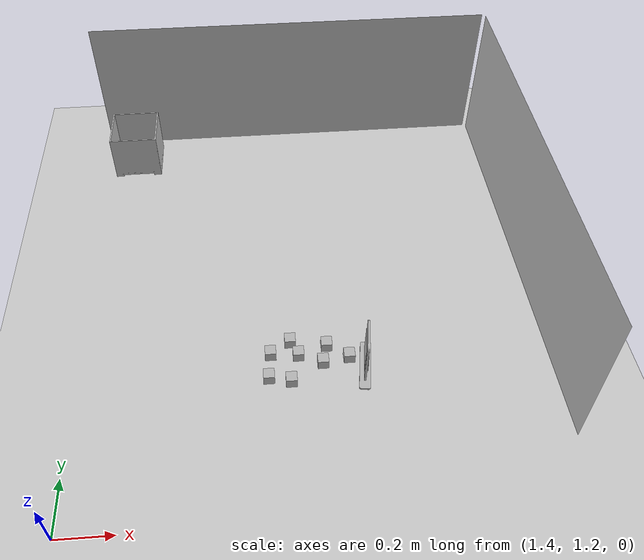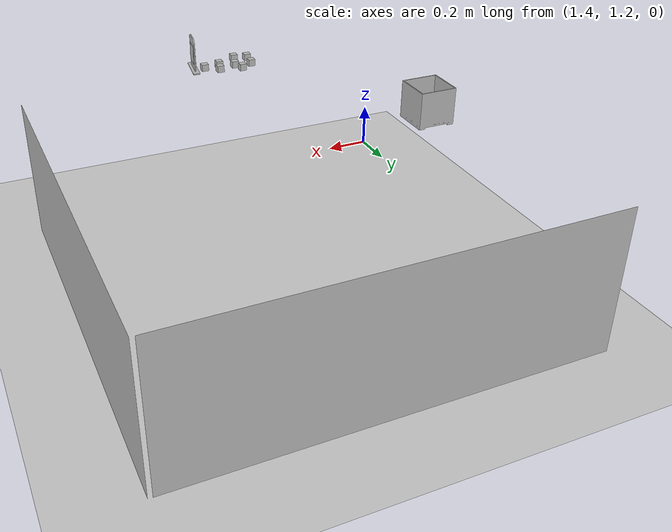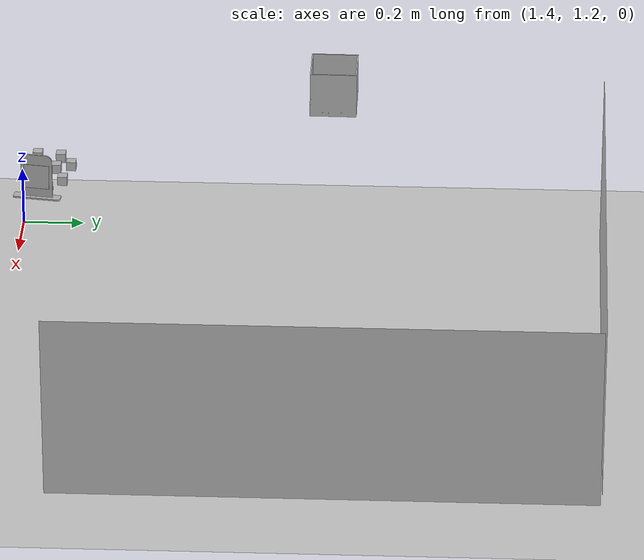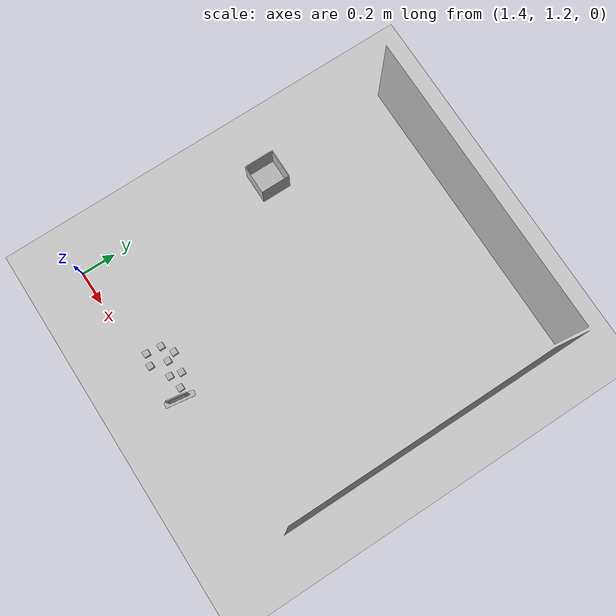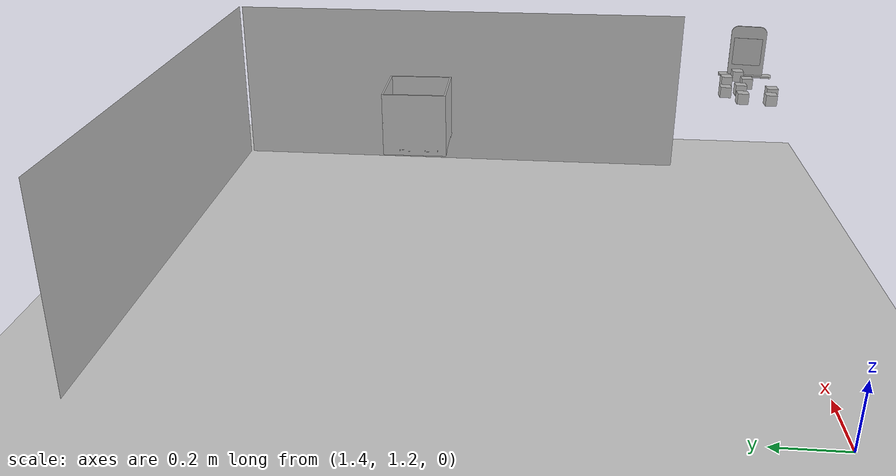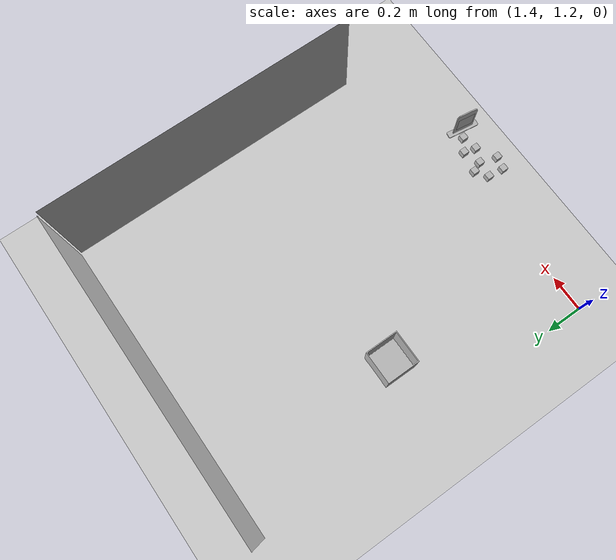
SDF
<sdf version="1.7">
 <world name="default">
  <model name="ground_plane">
   <static>1</static>
   <link name="link">
    <collision name="collision">
     <geometry><plane><normal>0 0 1</normal><size>100 100</size></plane></geometry>
     <surface><friction><ode><mu>100</mu><mu2>50</mu2></ode></friction></surface>
    </collision>
    <visual name="visual">
     <cast_shadows>0</cast_shadows>
     <geometry><plane><normal>0 0 1</normal><size>100 100</size></plane></geometry>
     <material>
      <script><uri>file://media/materials/scripts/gazebo.material</uri><name>Gazebo/Grey</name></script>
     </material>
    </visual>
   </link>
  </model>
  <model name="pancarte_qr_code_zone2Missebo">
   <pose>2.3585 1.34573 0.649378 -0 -0 -1.71538</pose>
   <model name="pancarte">
    <static>1</static>
    <link name="link">
     <collision name="collision">
      <pose>0 0.075 0 0 -0 0</pose>
      <geometry><box><size>0.15 0.15 0.03</size></box></geometry>
     </collision>
     <visual name="visual">
      <geometry>
       <mesh><scale>0.001 0.001 0.001</scale><uri>model://pancarte/meshes/PANCARTE_QR.stl</uri></mesh>
      </geometry>
     </visual>
    </link>
    <pose>8.8e-05 0.001115 -0.037644 1.55978 -0 0</pose>
   </model>
   <model name="qr_code_zone2Missebo">
    <static>1</static>
    <link name="qr_code_zone2Missebo_link">
     <pose>0 0 0.001 0 -0 1.5708</pose>
     <visual name="visual_qr_code_zone2Missebo">
      <cast_shadows>0</cast_shadows>
      <geometry><box><size>0.08 0.08 0.001</size></box></geometry>
      <material>
       <script>
        <uri>model://qr_code_zone2Missebo/materials/scripts</uri>
        <uri>model://qr_code_zone2Missebo/materials/textures</uri>
        <name>qr_code_zone2Missebo/qr_code_zone2Missebo</name>
       </script>
      </material>
     </visual>
    </link>
    <pose>-8.8e-05 -0.001115 0.037644 1.55615 -0 0</pose>
   </model>
   <model name="qr_code_zone2Missebo_0">
    <static>1</static>
    <link name="qr_code_zone2Missebo_link">
     <pose>0 0 0.001 0 -0 1.5708</pose>
     <visual name="visual_qr_code_zone2Missebo">
      <cast_shadows>0</cast_shadows>
      <geometry><box><size>0.08 0.08 0.001</size></box></geometry>
      <material>
       <script>
        <uri>model://qr_code_zone2Missebo/materials/scripts</uri>
        <uri>model://qr_code_zone2Missebo/materials/textures</uri>
        <name>qr_code_zone2Missebo/qr_code_zone2Missebo</name>
       </script>
      </material>
     </visual>
    </link>
    <pose>-8.8e-05 0.0072 0.037644 -1.58544 0.001593 3.14159</pose>
   </model>
   <static>0</static>
  </model>
  <model name="menagers_industrielle_caisse_plastique">
   <static>0</static>
   <link name="link">
    <inertial>
     <mass>0.00893</mass>
     <inertia>
      <ixx>4.47e-06</ixx>
      <iyy>4.47e-06</iyy>
      <izz>4.47e-06</izz>
      <ixy>0</ixy>
      <ixz>0</ixz>
      <iyz>0</iyz>
     </inertia>
    </inertial>
    <visual name="cube_visual">
     <geometry><box><size>0.03 0.03 0.03</size></box></geometry>
     <material>
      <script>
       <uri>model://menagers_industrielle_caisse_plastique/materials/scripts/</uri>
       <uri>model://menagers_industrielle_caisse_plastique/materials/textures/</uri>
       <name>menagers_industrielle_caisse_plastique/FaceMaterial</name>
      </script>
     </material>
    </visual>
    <collision name="collision"><geometry><box><size>0.03 0.03 0.03</size></box></geometry></collision>
   </link>
   <pose>2.24675 1.36235 0.624991 1.8e-05 0 -0.002003</pose>
  </model>
  <model name="menagers_residentielle_bouteille_lait">
   <static>0</static>
   <link name="link">
    <inertial>
     <mass>0.00893</mass>
     <inertia>
      <ixx>4.47e-06</ixx>
      <iyy>4.47e-06</iyy>
      <izz>4.47e-06</izz>
      <ixy>0</ixy>
      <ixz>0</ixz>
      <iyz>0</iyz>
     </inertia>
    </inertial>
    <visual name="cube_visual">
     <geometry><box><size>0.03 0.03 0.03</size></box></geometry>
     <material>
      <script>
       <uri>model://menagers_residentielle_bouteille_lait/materials/scripts/</uri>
       <uri>model://menagers_residentielle_bouteille_lait/materials/textures/</uri>
       <name>menagers_residentielle_bouteille_lait/FaceMaterial</name>
      </script>
     </material>
    </visual>
    <collision name="collision"><geometry><box><size>0.03 0.03 0.03</size></box></geometry></collision>
   </link>
   <pose>2.15775 1.3103 0.624991 1.8e-05 0 -0.002003</pose>
  </model>
  <model name="recyclables_commerciale_metal_conserve_grande">
   <static>0</static>
   <link name="link">
    <inertial>
     <mass>0.00893</mass>
     <inertia>
      <ixx>4.47e-06</ixx>
      <iyy>4.47e-06</iyy>
      <izz>4.47e-06</izz>
      <ixy>0</ixy>
      <ixz>0</ixz>
      <iyz>0</iyz>
     </inertia>
    </inertial>
    <visual name="cube_visual">
     <geometry><box><size>0.03 0.03 0.03</size></box></geometry>
     <material>
      <script>
       <uri>model://recyclables_commerciale_metal_conserve_grande/materials/scripts/</uri>
       <uri>model://recyclables_commerciale_metal_conserve_grande/materials/textures/</uri>
       <name>recyclables_commerciale_metal_conserve_grande/FaceMaterial</name>
      </script>
     </material>
    </visual>
    <collision name="collision"><geometry><box><size>0.03 0.03 0.03</size></box></geometry></collision>
   </link>
   <pose>2.16155 1.43649 0.625 -1e-06 -6e-06 -0.007125</pose>
  </model>
  <model name="recyclables_commerciale_papier_bureau_blanc">
   <static>0</static>
   <link name="link">
    <inertial>
     <mass>0.00893</mass>
     <inertia>
      <ixx>4.47e-06</ixx>
      <iyy>4.47e-06</iyy>
      <izz>4.47e-06</izz>
      <ixy>0</ixy>
      <ixz>0</ixz>
      <iyz>0</iyz>
     </inertia>
    </inertial>
    <visual name="cube_visual">
     <geometry><box><size>0.03 0.03 0.03</size></box></geometry>
     <material>
      <script>
       <uri>model://recyclables_commerciale_papier_bureau_blanc/materials/scripts/</uri>
       <uri>model://recyclables_commerciale_papier_bureau_blanc/materials/textures/</uri>
       <name>recyclables_commerciale_papier_bureau_blanc/FaceMaterial</name>
      </script>
     </material>
    </visual>
    <collision name="collision"><geometry><box><size>0.03 0.03 0.03</size></box></geometry></collision>
   </link>
   <pose>2.10613 1.39925 0.625 0 0 -0.006724</pose>
  </model>
  <model name="recyclables_residentielle_bouteille_plastique_propre">
   <static>0</static>
   <link name="link">
    <inertial>
     <mass>0.00893</mass>
     <inertia>
      <ixx>4.47e-06</ixx>
      <iyy>4.47e-06</iyy>
      <izz>4.47e-06</izz>
      <ixy>0</ixy>
      <ixz>0</ixz>
      <iyz>0</iyz>
     </inertia>
    </inertial>
    <visual name="cube_visual">
     <geometry><box><size>0.03 0.03 0.03</size></box></geometry>
     <material>
      <script>
       <uri>model://recyclables_residentielle_bouteille_plastique_propre/materials/scripts/</uri>
       <uri>model://recyclables_residentielle_bouteille_plastique_propre/materials/textures/</uri>
       <name>recyclables_residentielle_bouteille_plastique_propre/FaceMaterial</name>
      </script>
     </material>
    </visual>
    <collision name="collision"><geometry><box><size>0.03 0.03 0.03</size></box></geometry></collision>
   </link>
   <pose>2.09856 1.32494 0.625 0 -0 0.000658</pose>
  </model>
  <model name="recyclables_residentielle_bouteille_verre_huile">
   <static>0</static>
   <link name="link">
    <inertial>
     <mass>0.00893</mass>
     <inertia>
      <ixx>4.47e-06</ixx>
      <iyy>4.47e-06</iyy>
      <izz>4.47e-06</izz>
      <ixy>0</ixy>
      <ixz>0</ixz>
      <iyz>0</iyz>
     </inertia>
    </inertial>
    <visual name="cube_visual">
     <geometry><box><size>0.03 0.03 0.03</size></box></geometry>
     <material>
      <script>
       <uri>model://recyclables_residentielle_bouteille_verre_huile/materials/scripts/</uri>
       <uri>model://recyclables_residentielle_bouteille_verre_huile/materials/textures/</uri>
       <name>recyclables_residentielle_bouteille_verre_huile/FaceMaterial</name>
      </script>
     </material>
    </visual>
    <collision name="collision"><geometry><box><size>0.03 0.03 0.03</size></box></geometry></collision>
   </link>
   <pose>2.26084 1.41711 0.624993 -0 8e-06 -0.007163</pose>
  </model>
  <model name="dangereux_commerciale_batterie_vehicule_12V">
   <static>0</static>
   <link name="link">
    <inertial>
     <mass>0.00893</mass>
     <inertia>
      <ixx>4.47e-06</ixx>
      <iyy>4.47e-06</iyy>
      <izz>4.47e-06</izz>
      <ixy>0</ixy>
      <ixz>0</ixz>
      <iyz>0</iyz>
     </inertia>
    </inertial>
    <visual name="cube_visual">
     <geometry><box><size>0.03 0.03 0.03</size></box></geometry>
     <material>
      <script>
       <uri>model://dangereux_commerciale_batterie_vehicule_12V/materials/scripts/</uri>
       <uri>model://dangereux_commerciale_batterie_vehicule_12V/materials/textures/</uri>
       <name>dangereux_commerciale_batterie_vehicule_12V/FaceMaterial</name>
      </script>
     </material>
    </visual>
    <collision name="collision"><geometry><box><size>0.03 0.03 0.03</size></box></geometry></collision>
   </link>
   <pose>2.18195 1.39113 0.624996 0 -3.7e-05 -0.000339</pose>
  </model>
  <model name="dangereux_residentielle_batterie_telephone">
   <static>0</static>
   <link name="link">
    <inertial>
     <mass>0.00893</mass>
     <inertia>
      <ixx>4.47e-06</ixx>
      <iyy>4.47e-06</iyy>
      <izz>4.47e-06</izz>
      <ixy>0</ixy>
      <ixz>0</ixz>
      <iyz>0</iyz>
     </inertia>
    </inertial>
    <visual name="cube_visual">
     <geometry><box><size>0.03 0.03 0.03</size></box></geometry>
     <material>
      <script>
       <uri>model://dangereux_residentielle_batterie_telephone/materials/scripts/</uri>
       <uri>model://dangereux_residentielle_batterie_telephone/materials/textures/</uri>
       <name>dangereux_residentielle_batterie_telephone/FaceMaterial</name>
      </script>
     </material>
    </visual>
    <collision name="collision"><geometry><box><size>0.03 0.03 0.03</size></box></geometry></collision>
   </link>
   <pose>2.31905 1.37537 0.624992 -4.3e-05 -4e-06 -0.005211</pose>
  </model>
  <model name="corbeille_2">
   <static>1</static>
   <pose>1.69811 2.24948 0.613764 0 -0 0</pose>
   <link name="link">
    <collision name="collision">
     <pose>0 0 0.075 0 -0 0</pose>
     <geometry><box><size>0.15 0.15 0.15</size></box></geometry>
    </collision>
    <visual name="visual">
     <pose>0 0 0.01 1.56319 -0 0</pose>
     <geometry>
      <mesh><scale>0.001 0.001 0.001</scale><uri>model://corbeille/meshes/CORBEILLE.stl</uri></mesh>
     </geometry>
    </visual>
   </link>
  </model>
  <model name="logotrc_2">
   <static>1</static>
   <link name="link">
    <visual name="cube_visual">
     <geometry><box><size>1.7021 0 0.60443</size></box></geometry>
     <material>
      <script>
       <uri>model://logotrc/materials/scripts/</uri>
       <uri>model://logotrc/materials/textures/</uri>
       <name>logotrc/FaceMaterial</name>
      </script>
     </material>
    </visual>
   </link>
   <pose>2.26663 3.12585 0.307285 0 -0 0</pose>
  </model>
  <model name="logotrc_8">
   <static>1</static>
   <link name="link">
    <visual name="cube_visual">
     <geometry><box><size>1.7021 0 0.60443</size></box></geometry>
     <material>
      <script>
       <uri>model://logotrc/materials/scripts/</uri>
       <uri>model://logotrc/materials/textures/</uri>
       <name>logotrc/FaceMaterial</name>
      </script>
     </material>
    </visual>
   </link>
   <pose>3.133 2.26961 0.302761 0 0 -1.57112</pose>
  </model>
 </world>
</sdf>
